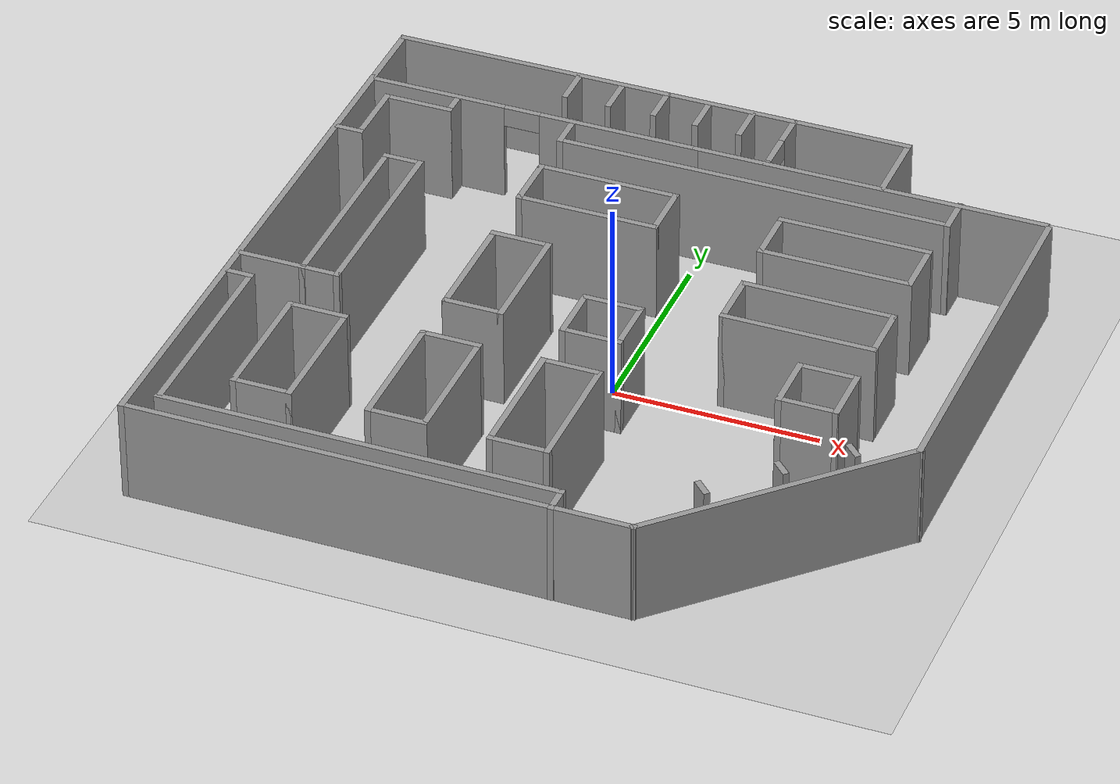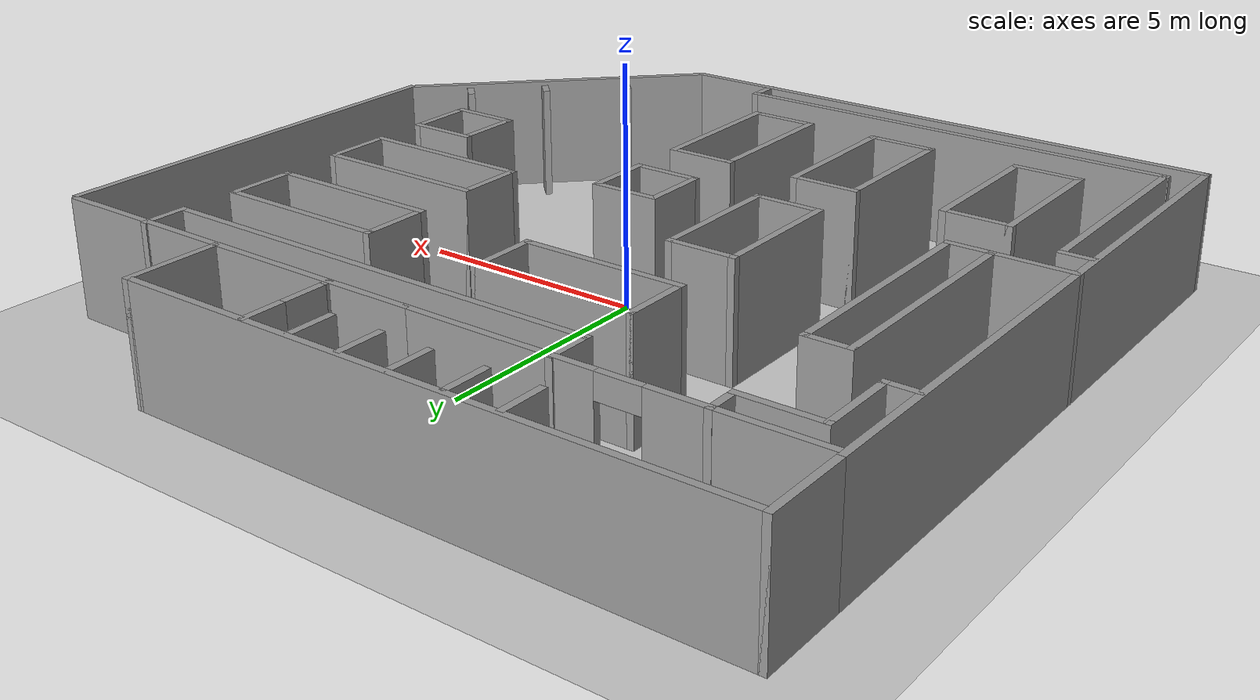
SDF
<sdf version="1.7">
 <world name="default">
  <model name="ground_plane">
   <static>1</static>
   <link name="link">
    <collision name="collision">
     <geometry><plane><normal>0 0 1</normal><size>100 100</size></plane></geometry>
     <surface><friction><ode><mu>100</mu><mu2>50</mu2></ode></friction></surface>
    </collision>
    <visual name="visual">
     <cast_shadows>0</cast_shadows>
     <geometry><plane><normal>0 0 1</normal><size>100 100</size></plane></geometry>
     <material>
      <script><uri>file://media/materials/scripts/gazebo.material</uri><name>Gazebo/Grey</name></script>
     </material>
    </visual>
   </link>
  </model>
  <model name="store">
   <pose>-0.216519 0.463179 0 0 -0 0</pose>
   <link name="Wall_102">
    <collision name="Wall_102_Collision">
     <geometry><box><size>1.03102 0.15 2.5</size></box></geometry>
     <pose>0 0 1.25 0 -0 0</pose>
    </collision>
    <visual name="Wall_102_Visual">
     <pose>0 0 1.25 0 -0 0</pose>
     <geometry><box><size>1.03102 0.15 2.5</size></box></geometry>
     <material>
      <script><uri>file://media/materials/scripts/gazebo.material</uri><name>Gazebo/Grey</name></script>
      <ambient>1 1 1 1</ambient>
     </material>
     <meta><layer>0</layer></meta>
    </visual>
    <pose>-1.68237 7.52399 0 0 -0 1.5708</pose>
   </link>
   <link name="Wall_105">
    <collision name="Wall_105_Collision">
     <geometry><box><size>1 0.15 2.5</size></box></geometry>
     <pose>0 0 1.25 0 -0 0</pose>
    </collision>
    <visual name="Wall_105_Visual">
     <pose>0 0 1.25 0 -0 0</pose>
     <geometry><box><size>1 0.15 2.5</size></box></geometry>
     <material>
      <script><uri>file://media/materials/scripts/gazebo.material</uri><name>Gazebo/Grey</name></script>
      <ambient>1 1 1 1</ambient>
     </material>
     <meta><layer>0</layer></meta>
    </visual>
    <pose>-0.613388 7.47747 0 0 -0 1.5708</pose>
   </link>
   <link name="Wall_108">
    <collision name="Wall_108_Collision">
     <geometry><box><size>1 0.15 2.5</size></box></geometry>
     <pose>0 0 1.25 0 -0 0</pose>
    </collision>
    <visual name="Wall_108_Visual">
     <pose>0 0 1.25 0 -0 0</pose>
     <geometry><box><size>1 0.15 2.5</size></box></geometry>
     <material>
      <script><uri>file://media/materials/scripts/gazebo.material</uri><name>Gazebo/Grey</name></script>
      <ambient>1 1 1 1</ambient>
     </material>
     <meta><layer>0</layer></meta>
    </visual>
    <pose>0.486612 7.47747 0 0 -0 1.5708</pose>
   </link>
   <link name="Wall_111">
    <pose>1.5144 7.0395 0 0 -0 -1.5708</pose>
    <visual name="Wall_111_Visual_0">
     <pose>-0.544078 0 1.25 0 -0 0</pose>
     <geometry><box><size>0.911843 0.15 2.5</size></box></geometry>
     <material>
      <script><uri>file://media/materials/scripts/gazebo.material</uri><name>Gazebo/Grey</name></script>
      <ambient>1 1 1 1</ambient>
     </material>
     <meta><layer>0</layer></meta>
    </visual>
    <collision name="Wall_111_Collision_0">
     <geometry><box><size>0.911843 0.15 2.5</size></box></geometry>
     <pose>-0.544078 0 1.25 0 -0 0</pose>
    </collision>
    <visual name="Wall_111_Visual_1">
     <pose>0.905922 0 1.25 0 -0 0</pose>
     <geometry><box><size>0.188157 0.15 2.5</size></box></geometry>
     <material>
      <script><uri>file://media/materials/scripts/gazebo.material</uri><name>Gazebo/Grey</name></script>
      <ambient>1 1 1 1</ambient>
     </material>
     <meta><layer>0</layer></meta>
    </visual>
    <collision name="Wall_111_Collision_1">
     <geometry><box><size>0.188157 0.15 2.5</size></box></geometry>
     <pose>0.905922 0 1.25 0 -0 0</pose>
    </collision>
    <visual name="Wall_111_Visual_2">
     <pose>0.361843 0 2.25 0 -0 0</pose>
     <geometry><box><size>0.9 0.15 0.5</size></box></geometry>
     <material>
      <script><uri>file://media/materials/scripts/gazebo.material</uri><name>Gazebo/Grey</name></script>
      <ambient>1 1 1 1</ambient>
     </material>
     <meta><layer>0</layer></meta>
    </visual>
    <collision name="Wall_111_Collision_2">
     <geometry><box><size>0.9 0.15 0.5</size></box></geometry>
     <pose>0.361843 0 2.25 0 -0 0</pose>
    </collision>
   </link>
   <link name="Wall_123">
    <collision name="Wall_123_Collision">
     <geometry><box><size>1 0.15 2.5</size></box></geometry>
     <pose>0 0 1.25 0 -0 0</pose>
    </collision>
    <visual name="Wall_123_Visual">
     <pose>0 0 1.25 0 -0 0</pose>
     <geometry><box><size>1 0.15 2.5</size></box></geometry>
     <material>
      <script><uri>file://media/materials/scripts/gazebo.material</uri><name>Gazebo/Grey</name></script>
      <ambient>1 1 1 1</ambient>
     </material>
     <meta><layer>0</layer></meta>
    </visual>
    <pose>-3.33618 5.6902 0 0 -0 -1.5708</pose>
   </link>
   <link name="Wall_127">
    <collision name="Wall_127_Collision">
     <geometry><box><size>0.75 0.15 2.5</size></box></geometry>
     <pose>0 0 1.25 0 -0 0</pose>
    </collision>
    <visual name="Wall_127_Visual">
     <pose>0 0 1.25 0 -0 0</pose>
     <geometry><box><size>0.75 0.15 2.5</size></box></geometry>
     <material>
      <script><uri>file://media/materials/scripts/gazebo.material</uri><name>Gazebo/Grey</name></script>
      <ambient>1 1 1 1</ambient>
     </material>
     <meta><layer>0</layer></meta>
    </visual>
    <pose>-8.15613 3.88718 0 0 -0 0</pose>
   </link>
   <link name="Wall_128">
    <collision name="Wall_128_Collision">
     <geometry><box><size>1.75 0.15 2.5</size></box></geometry>
     <pose>0 0 1.25 0 -0 0</pose>
    </collision>
    <visual name="Wall_128_Visual">
     <pose>0 0 1.25 0 -0 0</pose>
     <geometry><box><size>1.75 0.15 2.5</size></box></geometry>
     <material>
      <script><uri>file://media/materials/scripts/gazebo.material</uri><name>Gazebo/Grey</name></script>
      <ambient>1 1 1 1</ambient>
     </material>
     <meta><layer>0</layer></meta>
    </visual>
    <pose>-7.85613 4.68718 0 0 -0 1.5708</pose>
   </link>
   <link name="Wall_129">
    <collision name="Wall_129_Collision">
     <geometry><box><size>1.75 0.15 2.5</size></box></geometry>
     <pose>0 0 1.25 0 -0 0</pose>
    </collision>
    <visual name="Wall_129_Visual">
     <pose>0 0 1.25 0 -0 0</pose>
     <geometry><box><size>1.75 0.15 2.5</size></box></geometry>
     <material>
      <script><uri>file://media/materials/scripts/gazebo.material</uri><name>Gazebo/Grey</name></script>
      <ambient>1 1 1 1</ambient>
     </material>
     <meta><layer>0</layer></meta>
    </visual>
    <pose>-7.05613 5.48718 0 0 -0 0</pose>
   </link>
   <link name="Wall_130">
    <collision name="Wall_130_Collision">
     <geometry><box><size>0.75 0.15 2.5</size></box></geometry>
     <pose>0 0 1.25 0 -0 0</pose>
    </collision>
    <visual name="Wall_130_Visual">
     <pose>0 0 1.25 0 -0 0</pose>
     <geometry><box><size>0.75 0.15 2.5</size></box></geometry>
     <material>
      <script><uri>file://media/materials/scripts/gazebo.material</uri><name>Gazebo/Grey</name></script>
      <ambient>1 1 1 1</ambient>
     </material>
     <meta><layer>0</layer></meta>
    </visual>
    <pose>-6.25613 5.78718 0 0 -0 1.5708</pose>
   </link>
   <link name="Wall_132">
    <collision name="Wall_132_Collision">
     <geometry><box><size>3.5 0.15 2.5</size></box></geometry>
     <pose>0 0 1.25 0 -0 0</pose>
    </collision>
    <visual name="Wall_132_Visual">
     <pose>0 0 1.25 0 -0 0</pose>
     <geometry><box><size>3.5 0.15 2.5</size></box></geometry>
     <material>
      <script><uri>file://media/materials/scripts/gazebo.material</uri><name>Gazebo/Grey</name></script>
      <ambient>1 1 1 1</ambient>
     </material>
     <meta><layer>0</layer></meta>
    </visual>
    <pose>-1.66783 4.07742 0 0 -0 0</pose>
   </link>
   <link name="Wall_133">
    <collision name="Wall_133_Collision">
     <geometry><box><size>1.5 0.15 2.5</size></box></geometry>
     <pose>0 0 1.25 0 -0 0</pose>
    </collision>
    <visual name="Wall_133_Visual">
     <pose>0 0 1.25 0 -0 0</pose>
     <geometry><box><size>1.5 0.15 2.5</size></box></geometry>
     <material>
      <script><uri>file://media/materials/scripts/gazebo.material</uri><name>Gazebo/Grey</name></script>
      <ambient>1 1 1 1</ambient>
     </material>
     <meta><layer>0</layer></meta>
    </visual>
    <pose>0.007172 3.40242 0 0 -0 -1.5708</pose>
   </link>
   <link name="Wall_134">
    <collision name="Wall_134_Collision">
     <geometry><box><size>3.5 0.15 2.5</size></box></geometry>
     <pose>0 0 1.25 0 -0 0</pose>
    </collision>
    <visual name="Wall_134_Visual">
     <pose>0 0 1.25 0 -0 0</pose>
     <geometry><box><size>3.5 0.15 2.5</size></box></geometry>
     <material>
      <script><uri>file://media/materials/scripts/gazebo.material</uri><name>Gazebo/Grey</name></script>
      <ambient>1 1 1 1</ambient>
     </material>
     <meta><layer>0</layer></meta>
    </visual>
    <pose>-1.66783 2.72742 0 0 -0 3.14159</pose>
   </link>
   <link name="Wall_135">
    <collision name="Wall_135_Collision">
     <geometry><box><size>1.5 0.15 2.5</size></box></geometry>
     <pose>0 0 1.25 0 -0 0</pose>
    </collision>
    <visual name="Wall_135_Visual">
     <pose>0 0 1.25 0 -0 0</pose>
     <geometry><box><size>1.5 0.15 2.5</size></box></geometry>
     <material>
      <script><uri>file://media/materials/scripts/gazebo.material</uri><name>Gazebo/Grey</name></script>
      <ambient>1 1 1 1</ambient>
     </material>
     <meta><layer>0</layer></meta>
    </visual>
    <pose>-3.34283 3.40242 0 0 -0 1.5708</pose>
   </link>
   <link name="Wall_138">
    <collision name="Wall_138_Collision">
     <geometry><box><size>1.5 0.15 2.5</size></box></geometry>
     <pose>0 0 1.25 0 -0 0</pose>
    </collision>
    <visual name="Wall_138_Visual">
     <pose>0 0 1.25 0 -0 0</pose>
     <geometry><box><size>1.5 0.15 2.5</size></box></geometry>
     <material>
      <script><uri>file://media/materials/scripts/gazebo.material</uri><name>Gazebo/Grey</name></script>
      <ambient>1 1 1 1</ambient>
     </material>
     <meta><layer>0</layer></meta>
    </visual>
    <pose>-2.67874 1.16012 0 0 -0 0</pose>
   </link>
   <link name="Wall_14">
    <pose>-4.29179 6.08421 0 0 -0 3.14159</pose>
    <visual name="Wall_14_Visual_0">
     <pose>-2.12002 0 1.25 0 -0 0</pose>
     <geometry><box><size>4.00997 0.15 2.5</size></box></geometry>
     <material>
      <script><uri>file://media/materials/scripts/gazebo.material</uri><name>Gazebo/Grey</name></script>
      <ambient>1 1 1 1</ambient>
     </material>
     <meta><layer>0</layer></meta>
    </visual>
    <collision name="Wall_14_Collision_0">
     <geometry><box><size>4.00997 0.15 2.5</size></box></geometry>
     <pose>-2.12002 0 1.25 0 -0 0</pose>
    </collision>
    <visual name="Wall_14_Visual_1">
     <pose>2.45498 0 1.25 0 -0 0</pose>
     <geometry><box><size>3.34003 0.15 2.5</size></box></geometry>
     <material>
      <script><uri>file://media/materials/scripts/gazebo.material</uri><name>Gazebo/Grey</name></script>
      <ambient>1 1 1 1</ambient>
     </material>
     <meta><layer>0</layer></meta>
    </visual>
    <collision name="Wall_14_Collision_1">
     <geometry><box><size>3.34003 0.15 2.5</size></box></geometry>
     <pose>2.45498 0 1.25 0 -0 0</pose>
    </collision>
    <visual name="Wall_14_Visual_2">
     <pose>0.334966 0 2.25 0 -0 0</pose>
     <geometry><box><size>0.9 0.15 0.5</size></box></geometry>
     <material>
      <script><uri>file://media/materials/scripts/gazebo.material</uri><name>Gazebo/Grey</name></script>
      <ambient>1 1 1 1</ambient>
     </material>
     <meta><layer>0</layer></meta>
    </visual>
    <collision name="Wall_14_Collision_2">
     <geometry><box><size>0.9 0.15 0.5</size></box></geometry>
     <pose>0.334966 0 2.25 0 -0 0</pose>
    </collision>
   </link>
   <link name="Wall_149">
    <collision name="Wall_149_Collision">
     <geometry><box><size>1.5 0.15 2.5</size></box></geometry>
     <pose>0 0 1.25 0 -0 0</pose>
    </collision>
    <visual name="Wall_149_Visual">
     <pose>0 0 1.25 0 -0 0</pose>
     <geometry><box><size>1.5 0.15 2.5</size></box></geometry>
     <material>
      <script><uri>file://media/materials/scripts/gazebo.material</uri><name>Gazebo/Grey</name></script>
      <ambient>1 1 1 1</ambient>
     </material>
     <meta><layer>0</layer></meta>
    </visual>
    <pose>6.20717 3.40242 0 0 -0 1.5708</pose>
   </link>
   <link name="Wall_154">
    <collision name="Wall_154_Collision">
     <geometry><box><size>3.75 0.15 2.5</size></box></geometry>
     <pose>0 0 1.25 0 -0 0</pose>
    </collision>
    <visual name="Wall_154_Visual">
     <pose>0 0 1.25 0 -0 0</pose>
     <geometry><box><size>3.75 0.15 2.5</size></box></geometry>
     <material>
      <script><uri>file://media/materials/scripts/gazebo.material</uri><name>Gazebo/Grey</name></script>
      <ambient>1 1 1 1</ambient>
     </material>
     <meta><layer>0</layer></meta>
    </visual>
    <pose>4.40717 2.72742 0 0 -0 3.14159</pose>
   </link>
   <link name="Wall_155">
    <collision name="Wall_155_Collision">
     <geometry><box><size>1.5 0.15 2.5</size></box></geometry>
     <pose>0 0 1.25 0 -0 0</pose>
    </collision>
    <visual name="Wall_155_Visual">
     <pose>0 0 1.25 0 -0 0</pose>
     <geometry><box><size>1.5 0.15 2.5</size></box></geometry>
     <material>
      <script><uri>file://media/materials/scripts/gazebo.material</uri><name>Gazebo/Grey</name></script>
      <ambient>1 1 1 1</ambient>
     </material>
     <meta><layer>0</layer></meta>
    </visual>
    <pose>2.60717 3.40242 0 0 -0 1.5708</pose>
   </link>
   <link name="Wall_156">
    <collision name="Wall_156_Collision">
     <geometry><box><size>3.75 0.15 2.5</size></box></geometry>
     <pose>0 0 1.25 0 -0 0</pose>
    </collision>
    <visual name="Wall_156_Visual">
     <pose>0 0 1.25 0 -0 0</pose>
     <geometry><box><size>3.75 0.15 2.5</size></box></geometry>
     <material>
      <script><uri>file://media/materials/scripts/gazebo.material</uri><name>Gazebo/Grey</name></script>
      <ambient>1 1 1 1</ambient>
     </material>
     <meta><layer>0</layer></meta>
    </visual>
    <pose>4.40717 4.07742 0 0 -0 0</pose>
   </link>
   <link name="Wall_160">
    <collision name="Wall_160_Collision">
     <geometry><box><size>9.75 0.15 2.5</size></box></geometry>
     <pose>0 0 1.25 0 -0 0</pose>
    </collision>
    <visual name="Wall_160_Visual">
     <pose>0 0 1.25 0 -0 0</pose>
     <geometry><box><size>9.75 0.15 2.5</size></box></geometry>
     <material>
      <script><uri>file://media/materials/scripts/gazebo.material</uri><name>Gazebo/Grey</name></script>
      <ambient>1 1 1 1</ambient>
     </material>
     <meta><layer>0</layer></meta>
    </visual>
    <pose>1.46382 5.2652 0 0 -0 0</pose>
   </link>
   <link name="Wall_161">
    <collision name="Wall_161_Collision">
     <geometry><box><size>1 0.15 2.5</size></box></geometry>
     <pose>0 0 1.25 0 -0 0</pose>
    </collision>
    <visual name="Wall_161_Visual">
     <pose>0 0 1.25 0 -0 0</pose>
     <geometry><box><size>1 0.15 2.5</size></box></geometry>
     <material>
      <script><uri>file://media/materials/scripts/gazebo.material</uri><name>Gazebo/Grey</name></script>
      <ambient>1 1 1 1</ambient>
     </material>
     <meta><layer>0</layer></meta>
    </visual>
    <pose>6.26382 5.6902 0 0 -0 1.5708</pose>
   </link>
   <link name="Wall_166">
    <collision name="Wall_166_Collision">
     <geometry><box><size>0.75 0.15 2.5</size></box></geometry>
     <pose>0 0 1.25 0 -0 0</pose>
    </collision>
    <visual name="Wall_166_Visual">
     <pose>0 0 1.25 0 -0 0</pose>
     <geometry><box><size>0.75 0.15 2.5</size></box></geometry>
     <material>
      <script><uri>file://media/materials/scripts/gazebo.material</uri><name>Gazebo/Grey</name></script>
      <ambient>1 1 1 1</ambient>
     </material>
     <meta><layer>0</layer></meta>
    </visual>
    <pose>-8.15897 -2.43178 0 0 -0 0</pose>
   </link>
   <link name="Wall_168">
    <collision name="Wall_168_Collision">
     <geometry><box><size>0.75 0.15 2.5</size></box></geometry>
     <pose>0 0 1.25 0 -0 0</pose>
    </collision>
    <visual name="Wall_168_Visual">
     <pose>0 0 1.25 0 -0 0</pose>
     <geometry><box><size>0.75 0.15 2.5</size></box></geometry>
     <material>
      <script><uri>file://media/materials/scripts/gazebo.material</uri><name>Gazebo/Grey</name></script>
      <ambient>1 1 1 1</ambient>
     </material>
     <meta><layer>0</layer></meta>
    </visual>
    <pose>1.71545 -7.66997 0 0 -0 1.5708</pose>
   </link>
   <link name="Wall_169">
    <collision name="Wall_169_Collision">
     <geometry><box><size>9.75 0.15 2.5</size></box></geometry>
     <pose>0 0 1.25 0 -0 0</pose>
    </collision>
    <visual name="Wall_169_Visual">
     <pose>0 0 1.25 0 -0 0</pose>
     <geometry><box><size>9.75 0.15 2.5</size></box></geometry>
     <material>
      <script><uri>file://media/materials/scripts/gazebo.material</uri><name>Gazebo/Grey</name></script>
      <ambient>1 1 1 1</ambient>
     </material>
     <meta><layer>0</layer></meta>
    </visual>
    <pose>-3.08455 -7.36997 0 0 -0 3.14159</pose>
   </link>
   <link name="Wall_171">
    <collision name="Wall_171_Collision">
     <geometry><box><size>5 0.15 2.5</size></box></geometry>
     <pose>0 0 1.25 0 -0 0</pose>
    </collision>
    <visual name="Wall_171_Visual">
     <pose>0 0 1.25 0 -0 0</pose>
     <geometry><box><size>5 0.15 2.5</size></box></geometry>
     <material>
      <script><uri>file://media/materials/scripts/gazebo.material</uri><name>Gazebo/Grey</name></script>
      <ambient>1 1 1 1</ambient>
     </material>
     <meta><layer>0</layer></meta>
    </visual>
    <pose>-7.85897 -4.85678 0 0 -0 -1.5708</pose>
   </link>
   <link name="Wall_175">
    <collision name="Wall_175_Collision">
     <geometry><box><size>1.5 0.15 2.5</size></box></geometry>
     <pose>0 0 1.25 0 -0 0</pose>
    </collision>
    <visual name="Wall_175_Visual">
     <pose>0 0 1.25 0 -0 0</pose>
     <geometry><box><size>1.5 0.15 2.5</size></box></geometry>
     <material>
      <script><uri>file://media/materials/scripts/gazebo.material</uri><name>Gazebo/Grey</name></script>
      <ambient>1 1 1 1</ambient>
     </material>
     <meta><layer>0</layer></meta>
    </visual>
    <pose>-5.89991 -3.1058 0 0 -0 0</pose>
   </link>
   <link name="Wall_178">
    <collision name="Wall_178_Collision">
     <geometry><box><size>3.25 0.15 2.5</size></box></geometry>
     <pose>0 0 1.25 0 -0 0</pose>
    </collision>
    <visual name="Wall_178_Visual">
     <pose>0 0 1.25 0 -0 0</pose>
     <geometry><box><size>3.25 0.15 2.5</size></box></geometry>
     <material>
      <script><uri>file://media/materials/scripts/gazebo.material</uri><name>Gazebo/Grey</name></script>
      <ambient>1 1 1 1</ambient>
     </material>
     <meta><layer>0</layer></meta>
    </visual>
    <pose>-6.57491 -4.6558 0 0 -0 -1.5708</pose>
   </link>
   <link name="Wall_179">
    <collision name="Wall_179_Collision">
     <geometry><box><size>1.5 0.15 2.5</size></box></geometry>
     <pose>0 0 1.25 0 -0 0</pose>
    </collision>
    <visual name="Wall_179_Visual">
     <pose>0 0 1.25 0 -0 0</pose>
     <geometry><box><size>1.5 0.15 2.5</size></box></geometry>
     <material>
      <script><uri>file://media/materials/scripts/gazebo.material</uri><name>Gazebo/Grey</name></script>
      <ambient>1 1 1 1</ambient>
     </material>
     <meta><layer>0</layer></meta>
    </visual>
    <pose>-5.89991 -6.2058 0 0 -0 0</pose>
   </link>
   <link name="Wall_180">
    <collision name="Wall_180_Collision">
     <geometry><box><size>3.25 0.15 2.5</size></box></geometry>
     <pose>0 0 1.25 0 -0 0</pose>
    </collision>
    <visual name="Wall_180_Visual">
     <pose>0 0 1.25 0 -0 0</pose>
     <geometry><box><size>3.25 0.15 2.5</size></box></geometry>
     <material>
      <script><uri>file://media/materials/scripts/gazebo.material</uri><name>Gazebo/Grey</name></script>
      <ambient>1 1 1 1</ambient>
     </material>
     <meta><layer>0</layer></meta>
    </visual>
    <pose>-5.22491 -4.6558 0 0 -0 1.5708</pose>
   </link>
   <link name="Wall_182">
    <collision name="Wall_182_Collision">
     <geometry><box><size>3 0.15 2.5</size></box></geometry>
     <pose>0 0 1.25 0 -0 0</pose>
    </collision>
    <visual name="Wall_182_Visual">
     <pose>0 0 1.25 0 -0 0</pose>
     <geometry><box><size>3 0.15 2.5</size></box></geometry>
     <material>
      <script><uri>file://media/materials/scripts/gazebo.material</uri><name>Gazebo/Grey</name></script>
      <ambient>1 1 1 1</ambient>
     </material>
     <meta><layer>0</layer></meta>
    </visual>
    <pose>-3.35374 -0.264879 0 0 -0 -1.5708</pose>
   </link>
   <link name="Wall_183">
    <collision name="Wall_183_Collision">
     <geometry><box><size>1.5 0.15 2.5</size></box></geometry>
     <pose>0 0 1.25 0 -0 0</pose>
    </collision>
    <visual name="Wall_183_Visual">
     <pose>0 0 1.25 0 -0 0</pose>
     <geometry><box><size>1.5 0.15 2.5</size></box></geometry>
     <material>
      <script><uri>file://media/materials/scripts/gazebo.material</uri><name>Gazebo/Grey</name></script>
      <ambient>1 1 1 1</ambient>
     </material>
     <meta><layer>0</layer></meta>
    </visual>
    <pose>-2.67874 -1.68988 0 0 -0 0</pose>
   </link>
   <link name="Wall_184">
    <collision name="Wall_184_Collision">
     <geometry><box><size>3 0.15 2.5</size></box></geometry>
     <pose>0 0 1.25 0 -0 0</pose>
    </collision>
    <visual name="Wall_184_Visual">
     <pose>0 0 1.25 0 -0 0</pose>
     <geometry><box><size>3 0.15 2.5</size></box></geometry>
     <material>
      <script><uri>file://media/materials/scripts/gazebo.material</uri><name>Gazebo/Grey</name></script>
      <ambient>1 1 1 1</ambient>
     </material>
     <meta><layer>0</layer></meta>
    </visual>
    <pose>-2.00374 -0.264879 0 0 -0 1.5708</pose>
   </link>
   <link name="Wall_188">
    <collision name="Wall_188_Collision">
     <geometry><box><size>1.5 0.15 2.5</size></box></geometry>
     <pose>0 0 1.25 0 -0 0</pose>
    </collision>
    <visual name="Wall_188_Visual">
     <pose>0 0 1.25 0 -0 0</pose>
     <geometry><box><size>1.5 0.15 2.5</size></box></geometry>
     <material>
      <script><uri>file://media/materials/scripts/gazebo.material</uri><name>Gazebo/Grey</name></script>
      <ambient>1 1 1 1</ambient>
     </material>
     <meta><layer>0</layer></meta>
    </visual>
    <pose>-2.67874 -3.03988 0 0 -0 0</pose>
   </link>
   <link name="Wall_190">
    <collision name="Wall_190_Collision">
     <geometry><box><size>3.25 0.15 2.5</size></box></geometry>
     <pose>0 0 1.25 0 -0 0</pose>
    </collision>
    <visual name="Wall_190_Visual">
     <pose>0 0 1.25 0 -0 0</pose>
     <geometry><box><size>3.25 0.15 2.5</size></box></geometry>
     <material>
      <script><uri>file://media/materials/scripts/gazebo.material</uri><name>Gazebo/Grey</name></script>
      <ambient>1 1 1 1</ambient>
     </material>
     <meta><layer>0</layer></meta>
    </visual>
    <pose>-3.35374 -4.58988 0 0 -0 -1.5708</pose>
   </link>
   <link name="Wall_191">
    <collision name="Wall_191_Collision">
     <geometry><box><size>1.5 0.15 2.5</size></box></geometry>
     <pose>0 0 1.25 0 -0 0</pose>
    </collision>
    <visual name="Wall_191_Visual">
     <pose>0 0 1.25 0 -0 0</pose>
     <geometry><box><size>1.5 0.15 2.5</size></box></geometry>
     <material>
      <script><uri>file://media/materials/scripts/gazebo.material</uri><name>Gazebo/Grey</name></script>
      <ambient>1 1 1 1</ambient>
     </material>
     <meta><layer>0</layer></meta>
    </visual>
    <pose>-2.67874 -6.13988 0 0 -0 0</pose>
   </link>
   <link name="Wall_192">
    <collision name="Wall_192_Collision">
     <geometry><box><size>3.25 0.15 2.5</size></box></geometry>
     <pose>0 0 1.25 0 -0 0</pose>
    </collision>
    <visual name="Wall_192_Visual">
     <pose>0 0 1.25 0 -0 0</pose>
     <geometry><box><size>3.25 0.15 2.5</size></box></geometry>
     <material>
      <script><uri>file://media/materials/scripts/gazebo.material</uri><name>Gazebo/Grey</name></script>
      <ambient>1 1 1 1</ambient>
     </material>
     <meta><layer>0</layer></meta>
    </visual>
    <pose>-2.00374 -4.58988 0 0 -0 1.5708</pose>
   </link>
   <link name="Wall_195">
    <collision name="Wall_195_Collision">
     <geometry><box><size>3.25 0.15 2.5</size></box></geometry>
     <pose>0 0 1.25 0 -0 0</pose>
    </collision>
    <visual name="Wall_195_Visual">
     <pose>0 0 1.25 0 -0 0</pose>
     <geometry><box><size>3.25 0.15 2.5</size></box></geometry>
     <material>
      <script><uri>file://media/materials/scripts/gazebo.material</uri><name>Gazebo/Grey</name></script>
      <ambient>1 1 1 1</ambient>
     </material>
     <meta><layer>0</layer></meta>
    </visual>
    <pose>-0.455505 -4.57482 0 0 -0 -1.5708</pose>
   </link>
   <link name="Wall_197">
    <collision name="Wall_197_Collision">
     <geometry><box><size>1.5 0.15 2.5</size></box></geometry>
     <pose>0 0 1.25 0 -0 0</pose>
    </collision>
    <visual name="Wall_197_Visual">
     <pose>0 0 1.25 0 -0 0</pose>
     <geometry><box><size>1.5 0.15 2.5</size></box></geometry>
     <material>
      <script><uri>file://media/materials/scripts/gazebo.material</uri><name>Gazebo/Grey</name></script>
      <ambient>1 1 1 1</ambient>
     </material>
     <meta><layer>0</layer></meta>
    </visual>
    <pose>0.219495 -3.02481 0 0 -0 0</pose>
   </link>
   <link name="Wall_198">
    <collision name="Wall_198_Collision">
     <geometry><box><size>3.25 0.15 2.5</size></box></geometry>
     <pose>0 0 1.25 0 -0 0</pose>
    </collision>
    <visual name="Wall_198_Visual">
     <pose>0 0 1.25 0 -0 0</pose>
     <geometry><box><size>3.25 0.15 2.5</size></box></geometry>
     <material>
      <script><uri>file://media/materials/scripts/gazebo.material</uri><name>Gazebo/Grey</name></script>
      <ambient>1 1 1 1</ambient>
     </material>
     <meta><layer>0</layer></meta>
    </visual>
    <pose>0.894495 -4.57482 0 0 -0 -1.5708</pose>
   </link>
   <link name="Wall_199">
    <collision name="Wall_199_Collision">
     <geometry><box><size>1.5 0.15 2.5</size></box></geometry>
     <pose>0 0 1.25 0 -0 0</pose>
    </collision>
    <visual name="Wall_199_Visual">
     <pose>0 0 1.25 0 -0 0</pose>
     <geometry><box><size>1.5 0.15 2.5</size></box></geometry>
     <material>
      <script><uri>file://media/materials/scripts/gazebo.material</uri><name>Gazebo/Grey</name></script>
      <ambient>1 1 1 1</ambient>
     </material>
     <meta><layer>0</layer></meta>
    </visual>
    <pose>0.219495 -6.12481 0 0 -0 3.14159</pose>
   </link>
   <link name="Wall_201">
    <collision name="Wall_201_Collision">
     <geometry><box><size>3.75 0.15 2.5</size></box></geometry>
     <pose>0 0 1.25 0 -0 0</pose>
    </collision>
    <visual name="Wall_201_Visual">
     <pose>0 0 1.25 0 -0 0</pose>
     <geometry><box><size>3.75 0.15 2.5</size></box></geometry>
     <material>
      <script><uri>file://media/materials/scripts/gazebo.material</uri><name>Gazebo/Grey</name></script>
      <ambient>1 1 1 1</ambient>
     </material>
     <meta><layer>0</layer></meta>
    </visual>
    <pose>4.48782 1.38184 0 0 -0 0</pose>
   </link>
   <link name="Wall_202">
    <collision name="Wall_202_Collision">
     <geometry><box><size>1.5 0.15 2.5</size></box></geometry>
     <pose>0 0 1.25 0 -0 0</pose>
    </collision>
    <visual name="Wall_202_Visual">
     <pose>0 0 1.25 0 -0 0</pose>
     <geometry><box><size>1.5 0.15 2.5</size></box></geometry>
     <material>
      <script><uri>file://media/materials/scripts/gazebo.material</uri><name>Gazebo/Grey</name></script>
      <ambient>1 1 1 1</ambient>
     </material>
     <meta><layer>0</layer></meta>
    </visual>
    <pose>6.28782 0.706842 0 0 -0 -1.5708</pose>
   </link>
   <link name="Wall_203">
    <collision name="Wall_203_Collision">
     <geometry><box><size>3.75 0.15 2.5</size></box></geometry>
     <pose>0 0 1.25 0 -0 0</pose>
    </collision>
    <visual name="Wall_203_Visual">
     <pose>0 0 1.25 0 -0 0</pose>
     <geometry><box><size>3.75 0.15 2.5</size></box></geometry>
     <material>
      <script><uri>file://media/materials/scripts/gazebo.material</uri><name>Gazebo/Grey</name></script>
      <ambient>1 1 1 1</ambient>
     </material>
     <meta><layer>0</layer></meta>
    </visual>
    <pose>4.48782 0.031842 0 0 -0 3.14159</pose>
   </link>
   <link name="Wall_204">
    <collision name="Wall_204_Collision">
     <geometry><box><size>1.5 0.15 2.5</size></box></geometry>
     <pose>0 0 1.25 0 -0 0</pose>
    </collision>
    <visual name="Wall_204_Visual">
     <pose>0 0 1.25 0 -0 0</pose>
     <geometry><box><size>1.5 0.15 2.5</size></box></geometry>
     <material>
      <script><uri>file://media/materials/scripts/gazebo.material</uri><name>Gazebo/Grey</name></script>
      <ambient>1 1 1 1</ambient>
     </material>
     <meta><layer>0</layer></meta>
    </visual>
    <pose>2.68782 0.706842 0 0 -0 1.5708</pose>
   </link>
   <link name="Wall_206">
    <collision name="Wall_206_Collision">
     <geometry><box><size>1.5 0.15 2.5</size></box></geometry>
     <pose>0 0 1.25 0 -0 0</pose>
    </collision>
    <visual name="Wall_206_Visual">
     <pose>0 0 1.25 0 -0 0</pose>
     <geometry><box><size>1.5 0.15 2.5</size></box></geometry>
     <material>
      <script><uri>file://media/materials/scripts/gazebo.material</uri><name>Gazebo/Grey</name></script>
      <ambient>1 1 1 1</ambient>
     </material>
     <meta><layer>0</layer></meta>
    </visual>
    <pose>-0.472318 -1.09731 0 0 -0 1.5708</pose>
   </link>
   <link name="Wall_207">
    <collision name="Wall_207_Collision">
     <geometry><box><size>1.5 0.15 2.5</size></box></geometry>
     <pose>0 0 1.25 0 -0 0</pose>
    </collision>
    <visual name="Wall_207_Visual">
     <pose>0 0 1.25 0 -0 0</pose>
     <geometry><box><size>1.5 0.15 2.5</size></box></geometry>
     <material>
      <script><uri>file://media/materials/scripts/gazebo.material</uri><name>Gazebo/Grey</name></script>
      <ambient>1 1 1 1</ambient>
     </material>
     <meta><layer>0</layer></meta>
    </visual>
    <pose>0.202682 -0.422308 0 0 -0 0</pose>
   </link>
   <link name="Wall_208">
    <collision name="Wall_208_Collision">
     <geometry><box><size>1.5 0.15 2.5</size></box></geometry>
     <pose>0 0 1.25 0 -0 0</pose>
    </collision>
    <visual name="Wall_208_Visual">
     <pose>0 0 1.25 0 -0 0</pose>
     <geometry><box><size>1.5 0.15 2.5</size></box></geometry>
     <material>
      <script><uri>file://media/materials/scripts/gazebo.material</uri><name>Gazebo/Grey</name></script>
      <ambient>1 1 1 1</ambient>
     </material>
     <meta><layer>0</layer></meta>
    </visual>
    <pose>0.877682 -1.09731 0 0 -0 -1.5708</pose>
   </link>
   <link name="Wall_209">
    <collision name="Wall_209_Collision">
     <geometry><box><size>1.5 0.15 2.5</size></box></geometry>
     <pose>0 0 1.25 0 -0 0</pose>
    </collision>
    <visual name="Wall_209_Visual">
     <pose>0 0 1.25 0 -0 0</pose>
     <geometry><box><size>1.5 0.15 2.5</size></box></geometry>
     <material>
      <script><uri>file://media/materials/scripts/gazebo.material</uri><name>Gazebo/Grey</name></script>
      <ambient>1 1 1 1</ambient>
     </material>
     <meta><layer>0</layer></meta>
    </visual>
    <pose>0.202682 -1.77231 0 0 -0 3.14159</pose>
   </link>
   <link name="Wall_212">
    <collision name="Wall_212_Collision">
     <geometry><box><size>1.5 0.15 2.5</size></box></geometry>
     <pose>0 0 1.25 0 -0 0</pose>
    </collision>
    <visual name="Wall_212_Visual">
     <pose>0 0 1.25 0 -0 0</pose>
     <geometry><box><size>1.5 0.15 2.5</size></box></geometry>
     <material>
      <script><uri>file://media/materials/scripts/gazebo.material</uri><name>Gazebo/Grey</name></script>
      <ambient>1 1 1 1</ambient>
     </material>
     <meta><layer>0</layer></meta>
    </visual>
    <pose>5.61494 -1.11576 0 0 -0 3.14159</pose>
   </link>
   <link name="Wall_213">
    <collision name="Wall_213_Collision">
     <geometry><box><size>1.5 0.15 2.5</size></box></geometry>
     <pose>0 0 1.25 0 -0 0</pose>
    </collision>
    <visual name="Wall_213_Visual">
     <pose>0 0 1.25 0 -0 0</pose>
     <geometry><box><size>1.5 0.15 2.5</size></box></geometry>
     <material>
      <script><uri>file://media/materials/scripts/gazebo.material</uri><name>Gazebo/Grey</name></script>
      <ambient>1 1 1 1</ambient>
     </material>
     <meta><layer>0</layer></meta>
    </visual>
    <pose>4.93994 -1.79076 0 0 -0 -1.5708</pose>
   </link>
   <link name="Wall_214">
    <collision name="Wall_214_Collision">
     <geometry><box><size>1.5 0.15 2.5</size></box></geometry>
     <pose>0 0 1.25 0 -0 0</pose>
    </collision>
    <visual name="Wall_214_Visual">
     <pose>0 0 1.25 0 -0 0</pose>
     <geometry><box><size>1.5 0.15 2.5</size></box></geometry>
     <material>
      <script><uri>file://media/materials/scripts/gazebo.material</uri><name>Gazebo/Grey</name></script>
      <ambient>1 1 1 1</ambient>
     </material>
     <meta><layer>0</layer></meta>
    </visual>
    <pose>5.61494 -2.46576 0 0 -0 0</pose>
   </link>
   <link name="Wall_215">
    <collision name="Wall_215_Collision">
     <geometry><box><size>1.5 0.15 2.5</size></box></geometry>
     <pose>0 0 1.25 0 -0 0</pose>
    </collision>
    <visual name="Wall_215_Visual">
     <pose>0 0 1.25 0 -0 0</pose>
     <geometry><box><size>1.5 0.15 2.5</size></box></geometry>
     <material>
      <script><uri>file://media/materials/scripts/gazebo.material</uri><name>Gazebo/Grey</name></script>
      <ambient>1 1 1 1</ambient>
     </material>
     <meta><layer>0</layer></meta>
    </visual>
    <pose>6.28994 -1.79076 0 0 -0 1.5708</pose>
   </link>
   <link name="Wall_38">
    <collision name="Wall_38_Collision">
     <geometry><box><size>7 0.15 2.5</size></box></geometry>
     <pose>0 0 1.25 0 -0 0</pose>
    </collision>
    <visual name="Wall_38_Visual">
     <pose>0 0 1.25 0 -0 0</pose>
     <geometry><box><size>7 0.15 2.5</size></box></geometry>
     <material>
      <script><uri>file://media/materials/scripts/gazebo.material</uri><name>Gazebo/Grey</name></script>
      <ambient>1 1 1 1</ambient>
     </material>
     <meta><layer>0</layer></meta>
    </visual>
    <pose>6.03637 -5.53763 0 0 -0 -2.35619</pose>
   </link>
   <link name="Wall_39">
    <collision name="Wall_39_Collision">
     <geometry><box><size>12.25 0.15 2.5</size></box></geometry>
     <pose>0 0 1.25 0 -0 0</pose>
    </collision>
    <visual name="Wall_39_Visual">
     <pose>0 0 1.25 0 -0 0</pose>
     <geometry><box><size>12.25 0.15 2.5</size></box></geometry>
     <material>
      <script><uri>file://media/materials/scripts/gazebo.material</uri><name>Gazebo/Grey</name></script>
      <ambient>1 1 1 1</ambient>
     </material>
     <meta><layer>0</layer></meta>
    </visual>
    <pose>-2.43547 -7.95947 0 0 -0 3.14159</pose>
   </link>
   <link name="Wall_40">
    <collision name="Wall_40_Collision">
     <geometry><box><size>14.25 0.15 2.5</size></box></geometry>
     <pose>0 0 1.25 0 -0 0</pose>
    </collision>
    <visual name="Wall_40_Visual">
     <pose>0 0 1.25 0 -0 0</pose>
     <geometry><box><size>14.25 0.15 2.5</size></box></geometry>
     <material>
      <script><uri>file://media/materials/scripts/gazebo.material</uri><name>Gazebo/Grey</name></script>
      <ambient>1 1 1 1</ambient>
     </material>
     <meta><layer>0</layer></meta>
    </visual>
    <pose>-8.48547 -0.909467 0 0 -0 1.5708</pose>
   </link>
   <link name="Wall_43">
    <collision name="Wall_43_Collision">
     <geometry><box><size>9.25 0.15 2.5</size></box></geometry>
     <pose>0 0 1.25 0 -0 0</pose>
    </collision>
    <visual name="Wall_43_Visual">
     <pose>0 0 1.25 0 -0 0</pose>
     <geometry><box><size>9.25 0.15 2.5</size></box></geometry>
     <material>
      <script><uri>file://media/materials/scripts/gazebo.material</uri><name>Gazebo/Grey</name></script>
      <ambient>1 1 1 1</ambient>
     </material>
     <meta><layer>0</layer></meta>
    </visual>
    <pose>8.45821 1.43421 0 0 -0 1.5708</pose>
   </link>
   <link name="Wall_56">
    <collision name="Wall_56_Collision">
     <geometry><box><size>0.5 0.15 2.5</size></box></geometry>
     <pose>0 0 1.25 0 -0 0</pose>
    </collision>
    <visual name="Wall_56_Visual">
     <pose>0 0 1.25 0 -0 0</pose>
     <geometry><box><size>0.5 0.15 2.5</size></box></geometry>
     <material>
      <script><uri>file://media/materials/scripts/gazebo.material</uri><name>Gazebo/Grey</name></script>
      <ambient>1 1 1 1</ambient>
     </material>
     <meta><layer>0</layer></meta>
    </visual>
    <pose>7.09933 -3.66431 0 0 -0 2.35619</pose>
   </link>
   <link name="Wall_58">
    <collision name="Wall_58_Collision">
     <geometry><box><size>0.5 0.15 2.5</size></box></geometry>
     <pose>0 0 1.25 0 -0 0</pose>
    </collision>
    <visual name="Wall_58_Visual">
     <pose>0 0 1.25 0 -0 0</pose>
     <geometry><box><size>0.5 0.15 2.5</size></box></geometry>
     <material>
      <script><uri>file://media/materials/scripts/gazebo.material</uri><name>Gazebo/Grey</name></script>
      <ambient>1 1 1 1</ambient>
     </material>
     <meta><layer>0</layer></meta>
    </visual>
    <pose>5.84959 -4.8282 0 0 -0 2.35619</pose>
   </link>
   <link name="Wall_60">
    <collision name="Wall_60_Collision">
     <geometry><box><size>0.5 0.15 2.5</size></box></geometry>
     <pose>0 0 1.25 0 -0 0</pose>
    </collision>
    <visual name="Wall_60_Visual">
     <pose>0 0 1.25 0 -0 0</pose>
     <geometry><box><size>0.5 0.15 2.5</size></box></geometry>
     <material>
      <script><uri>file://media/materials/scripts/gazebo.material</uri><name>Gazebo/Grey</name></script>
      <ambient>1 1 1 1</ambient>
     </material>
     <meta><layer>0</layer></meta>
    </visual>
    <pose>4.49447 -6.12019 0 0 -0 2.35619</pose>
   </link>
   <link name="Wall_8">
    <collision name="Wall_8_Collision">
     <geometry><box><size>8.75 0.15 2.5</size></box></geometry>
     <pose>0 0 1.25 0 -0 0</pose>
    </collision>
    <visual name="Wall_8_Visual">
     <pose>0 0 1.25 0 -0 0</pose>
     <geometry><box><size>8.75 0.15 2.5</size></box></geometry>
     <material>
      <script><uri>file://media/materials/scripts/gazebo.material</uri><name>Gazebo/Grey</name></script>
      <ambient>1 1 1 1</ambient>
     </material>
     <meta><layer>0</layer></meta>
    </visual>
    <pose>4.05821 6.08421 0 0 -0 0</pose>
   </link>
   <link name="Wall_83">
    <collision name="Wall_83_Collision">
     <geometry><box><size>1.75 0.15 2.5</size></box></geometry>
     <pose>0 0 1.25 0 -0 0</pose>
    </collision>
    <visual name="Wall_83_Visual">
     <pose>0 0 1.25 0 -0 0</pose>
     <geometry><box><size>1.75 0.15 2.5</size></box></geometry>
     <material>
      <script><uri>file://media/materials/scripts/gazebo.material</uri><name>Gazebo/Grey</name></script>
      <ambient>1 1 1 1</ambient>
     </material>
     <meta><layer>0</layer></meta>
    </visual>
    <pose>-7.68928 -1.67642 0 0 -0 0</pose>
   </link>
   <link name="Wall_84">
    <collision name="Wall_84_Collision">
     <geometry><box><size>5 0.15 2.5</size></box></geometry>
     <pose>0 0 1.25 0 -0 0</pose>
    </collision>
    <visual name="Wall_84_Visual">
     <pose>0 0 1.25 0 -0 0</pose>
     <geometry><box><size>5 0.15 2.5</size></box></geometry>
     <material>
      <script><uri>file://media/materials/scripts/gazebo.material</uri><name>Gazebo/Grey</name></script>
      <ambient>1 1 1 1</ambient>
     </material>
     <meta><layer>0</layer></meta>
    </visual>
    <pose>-6.88928 0.748577 0 0 -0 1.5708</pose>
   </link>
   <link name="Wall_85">
    <collision name="Wall_85_Collision">
     <geometry><box><size>1 0.15 2.5</size></box></geometry>
     <pose>0 0 1.25 0 -0 0</pose>
    </collision>
    <visual name="Wall_85_Visual">
     <pose>0 0 1.25 0 -0 0</pose>
     <geometry><box><size>1 0.15 2.5</size></box></geometry>
     <material>
      <script><uri>file://media/materials/scripts/gazebo.material</uri><name>Gazebo/Grey</name></script>
      <ambient>1 1 1 1</ambient>
     </material>
     <meta><layer>0</layer></meta>
    </visual>
    <pose>-6.46428 3.17358 0 0 -0 0</pose>
   </link>
   <link name="Wall_86">
    <collision name="Wall_86_Collision">
     <geometry><box><size>5 0.15 2.5</size></box></geometry>
     <pose>0 0 1.25 0 -0 0</pose>
    </collision>
    <visual name="Wall_86_Visual">
     <pose>0 0 1.25 0 -0 0</pose>
     <geometry><box><size>5 0.15 2.5</size></box></geometry>
     <material>
      <script><uri>file://media/materials/scripts/gazebo.material</uri><name>Gazebo/Grey</name></script>
      <ambient>1 1 1 1</ambient>
     </material>
     <meta><layer>0</layer></meta>
    </visual>
    <pose>-6.03928 0.748577 0 0 -0 -1.5708</pose>
   </link>
   <link name="Wall_87">
    <collision name="Wall_87_Collision">
     <geometry><box><size>1 0.15 2.5</size></box></geometry>
     <pose>0 0 1.25 0 -0 0</pose>
    </collision>
    <visual name="Wall_87_Visual">
     <pose>0 0 1.25 0 -0 0</pose>
     <geometry><box><size>1 0.15 2.5</size></box></geometry>
     <material>
      <script><uri>file://media/materials/scripts/gazebo.material</uri><name>Gazebo/Grey</name></script>
      <ambient>1 1 1 1</ambient>
     </material>
     <meta><layer>0</layer></meta>
    </visual>
    <pose>-6.46428 -1.67642 0 0 -0 3.14159</pose>
   </link>
   <link name="Wall_90">
    <collision name="Wall_90_Collision">
     <geometry><box><size>2 0.15 2.5</size></box></geometry>
     <pose>0 0 1.25 0 -0 0</pose>
    </collision>
    <visual name="Wall_90_Visual">
     <pose>0 0 1.25 0 -0 0</pose>
     <geometry><box><size>2 0.15 2.5</size></box></geometry>
     <material>
      <script><uri>file://media/materials/scripts/gazebo.material</uri><name>Gazebo/Grey</name></script>
      <ambient>1 1 1 1</ambient>
     </material>
     <meta><layer>0</layer></meta>
    </visual>
    <pose>-8.48547 7.06553 0 0 -0 1.5708</pose>
   </link>
   <link name="Wall_91">
    <collision name="Wall_91_Collision">
     <geometry><box><size>13 0.15 2.5</size></box></geometry>
     <pose>0 0 1.25 0 -0 0</pose>
    </collision>
    <visual name="Wall_91_Visual">
     <pose>0 0 1.25 0 -0 0</pose>
     <geometry><box><size>13 0.15 2.5</size></box></geometry>
     <material>
      <script><uri>file://media/materials/scripts/gazebo.material</uri><name>Gazebo/Grey</name></script>
      <ambient>1 1 1 1</ambient>
     </material>
     <meta><layer>0</layer></meta>
    </visual>
    <pose>-2.06047 7.99053 0 0 -0 0</pose>
   </link>
   <link name="Wall_92">
    <collision name="Wall_92_Collision">
     <geometry><box><size>2 0.15 2.5</size></box></geometry>
     <pose>0 0 1.25 0 -0 0</pose>
    </collision>
    <visual name="Wall_92_Visual">
     <pose>0 0 1.25 0 -0 0</pose>
     <geometry><box><size>2 0.15 2.5</size></box></geometry>
     <material>
      <script><uri>file://media/materials/scripts/gazebo.material</uri><name>Gazebo/Grey</name></script>
      <ambient>1 1 1 1</ambient>
     </material>
     <meta><layer>0</layer></meta>
    </visual>
    <pose>4.36453 7.06553 0 0 -0 -1.5708</pose>
   </link>
   <link name="Wall_95">
    <collision name="Wall_95_Collision">
     <geometry><box><size>1 0.15 2.5</size></box></geometry>
     <pose>0 0 1.25 0 -0 0</pose>
    </collision>
    <visual name="Wall_95_Visual">
     <pose>0 0 1.25 0 -0 0</pose>
     <geometry><box><size>1 0.15 2.5</size></box></geometry>
     <material>
      <script><uri>file://media/materials/scripts/gazebo.material</uri><name>Gazebo/Grey</name></script>
      <ambient>1 1 1 1</ambient>
     </material>
     <meta><layer>0</layer></meta>
    </visual>
    <pose>-3.91339 7.47747 0 0 -0 -1.5708</pose>
   </link>
   <link name="Wall_97">
    <collision name="Wall_97_Collision">
     <geometry><box><size>1 0.15 2.5</size></box></geometry>
     <pose>0 0 1.25 0 -0 0</pose>
    </collision>
    <visual name="Wall_97_Visual">
     <pose>0 0 1.25 0 -0 0</pose>
     <geometry><box><size>1 0.15 2.5</size></box></geometry>
     <material>
      <script><uri>file://media/materials/scripts/gazebo.material</uri><name>Gazebo/Grey</name></script>
      <ambient>1 1 1 1</ambient>
     </material>
     <meta><layer>0</layer></meta>
    </visual>
    <pose>-2.81339 7.47747 0 0 -0 1.5708</pose>
   </link>
   <static>1</static>
  </model>
  <model name="table_2_clone_2">
   <static>1</static>
   <link name="link">
    <collision name="surface">
     <pose>0 0 1 0 -0 0</pose>
     <geometry><box><size>1.5 0.8 0.03</size></box></geometry>
     <surface><friction><ode><mu>0.6</mu><mu2>0.6</mu2></ode></friction></surface>
    </collision>
    <visual name="visual1">
     <pose>0 0 1 0 -0 0</pose>
     <geometry><box><size>1.5 0.8 0.03</size></box></geometry>
     <material>
      <script><uri>file://media/materials/scripts/gazebo.material</uri><name>Gazebo/Wood</name></script>
     </material>
    </visual>
    <collision name="front_left_leg">
     <pose>0.68 0.38 0.5 0 -0 0</pose>
     <geometry><cylinder><radius>0.02</radius><length>1</length></cylinder></geometry>
    </collision>
    <visual name="front_left_leg">
     <pose>0.68 0.38 0.5 0 -0 0</pose>
     <geometry><cylinder><radius>0.02</radius><length>1</length></cylinder></geometry>
     <material>
      <script><uri>file://media/materials/scripts/gazebo.material</uri><name>Gazebo/Grey</name></script>
     </material>
    </visual>
    <collision name="front_right_leg">
     <pose>0.68 -0.38 0.5 0 -0 0</pose>
     <geometry><cylinder><radius>0.02</radius><length>1</length></cylinder></geometry>
    </collision>
    <visual name="front_right_leg">
     <pose>0.68 -0.38 0.5 0 -0 0</pose>
     <geometry><cylinder><radius>0.02</radius><length>1</length></cylinder></geometry>
     <material>
      <script><uri>file://media/materials/scripts/gazebo.material</uri><name>Gazebo/Grey</name></script>
     </material>
    </visual>
    <collision name="back_right_leg">
     <pose>-0.68 -0.38 0.5 0 -0 0</pose>
     <geometry><cylinder><radius>0.02</radius><length>1</length></cylinder></geometry>
    </collision>
    <visual name="back_right_leg">
     <pose>-0.68 -0.38 0.5 0 -0 0</pose>
     <geometry><cylinder><radius>0.02</radius><length>1</length></cylinder></geometry>
     <material>
      <script><uri>file://media/materials/scripts/gazebo.material</uri><name>Gazebo/Grey</name></script>
     </material>
    </visual>
    <collision name="back_left_leg">
     <pose>-0.68 0.38 0.5 0 -0 0</pose>
     <geometry><cylinder><radius>0.02</radius><length>1</length></cylinder></geometry>
    </collision>
    <visual name="back_left_leg">
     <pose>-0.68 0.38 0.5 0 -0 0</pose>
     <geometry><cylinder><radius>0.02</radius><length>1</length></cylinder></geometry>
     <material>
      <script><uri>file://media/materials/scripts/gazebo.material</uri><name>Gazebo/Grey</name></script>
     </material>
    </visual>
   </link>
   <pose>-8.0831 7.44358 0 0 0 -1.57243</pose>
  </model>
 </world>
</sdf>
